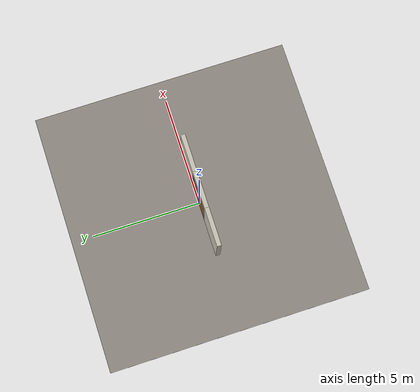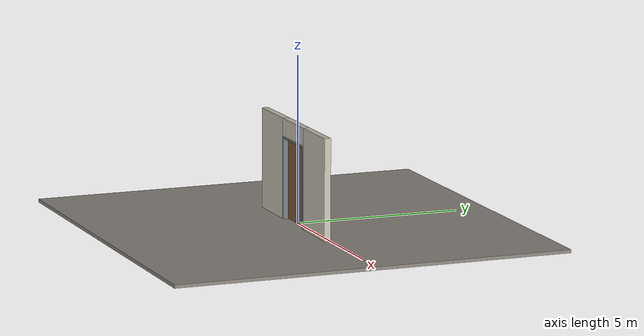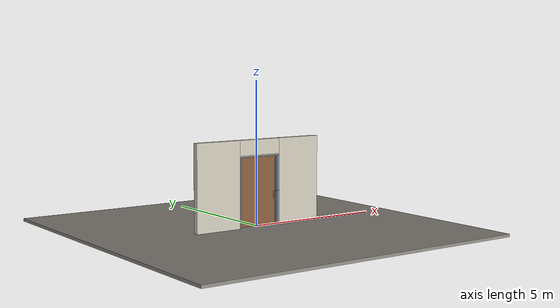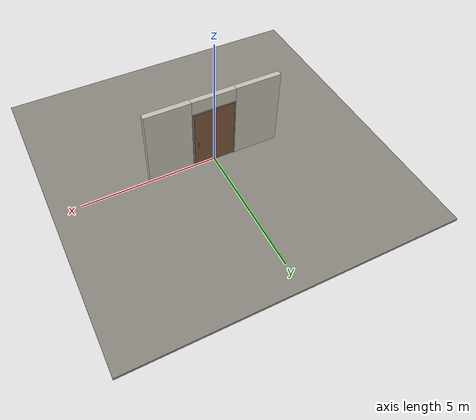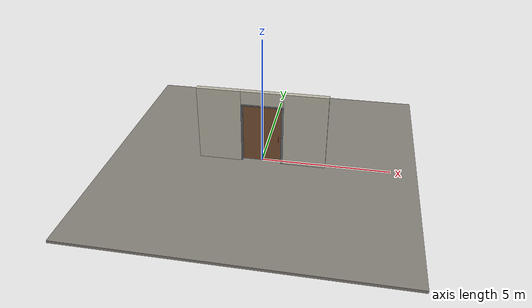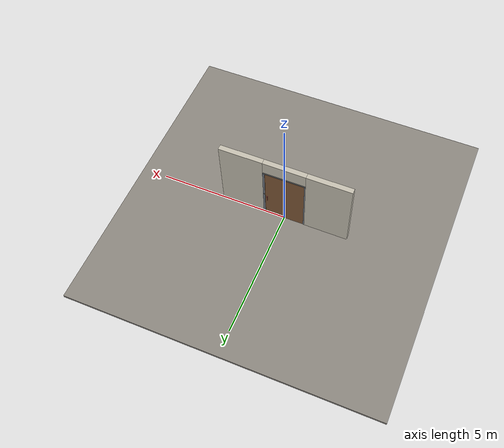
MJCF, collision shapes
<?xml version="1.0" ?>
<mujoco model="db0637_pivot_minimal">
  <compiler angle="radian" meshdir="../../hardware" texturedir="../../textures" autolimits="true" inertiafromgeom="false"/>
  <option timestep="0.002" integrator="implicitfast" cone="elliptic" impratio="10" noslip_iterations="3">
    <flag multiccd="enable"/>
  </option>
  <size memory="16M"/>
  <default>
    <geom condim="4" solref="0.005 1" solimp="0.95 0.99 0.001"/>
    <joint solreflimit="0.005 1" solimplimit="0.95 0.99 0.001"/>
    <tendon solreflimit="0.005 1"/>
    <equality solref="0.002 1"/>
  </default>
  <visual>
    <headlight ambient="0.4 0.4 0.4" diffuse="0.7 0.7 0.7" specular="0.2 0.2 0.2"/>
    <quality shadowsize="4096"/>
    <map znear="0.01" zfar="60"/>
  </visual>
  <asset>
    <mesh name="pull_f8d79d6331" file="pull_f8d79d6331.obj"/>
    <material name="mat_floor" rgba="0.55 0.53 0.5 1" specular="0.2" shininess="0.15" reflectance="0"/>
    <material name="mat_wall" rgba="0.78 0.76 0.7 1" specular="0.2" shininess="0.1" reflectance="0"/>
    <material name="mat_leaf" rgba="0.504 0.347 0.219 1" specular="0.2" shininess="0.5" reflectance="0"/>
    <material name="mat_hinge" rgba="0.65 0.66 0.68 1" specular="0.74" shininess="0.5" reflectance="0.36"/>
    <material name="mat_op_stainless" rgba="0.75 0.76 0.77 1" specular="0.8" shininess="0.65" reflectance="0.4"/>
    <material name="mat_deadbolt" rgba="0.85 0.66 0.3 1" specular="0.8" shininess="0.75" reflectance="0.4"/>
    <material name="mat_frame" rgba="0.45 0.48 0.52 1" specular="0.32" shininess="0.6" reflectance="0.08"/>
    <material name="mat_closer" rgba="0.75 0.76 0.77 1" specular="0.8" shininess="0.65" reflectance="0.4"/>
    <texture name="skybox" type="skybox" builtin="gradient" rgb1="0.6 0.7 0.85" rgb2="0.9 0.92 0.95" width="256" height="256"/>
  </asset>
  <worldbody>
    <light name="sun" pos="1.5 -2.5 4" dir="-0.3 0.5 -0.8" directional="true" diffuse="0.8 0.8 0.8" specular="0.3 0.3 0.3" castshadow="true"/>
    <light name="fill" pos="-1.5 2.5 3" dir="0.3 -0.5 -0.7" directional="true" diffuse="0.35 0.35 0.4" castshadow="false"/>
    <camera name="robot_view" pos="0 -2.95675 2.01415" xyaxes="1 0 0 0 0.26963 0.962964" fovy="52"/>
    <camera name="far_view" pos="0 2.81575 2.01415" xyaxes="-1 0 0 0 -0.26963 0.962964" fovy="52"/>
    <camera name="iso" pos="2.19355 -2.49495 2.47595" xyaxes="0.741536 0.670913 0 -0.242917 0.268487 0.932151" fovy="46"/>
    <camera name="detail_handle" pos="0.822 -0.8975 1.33" xyaxes="0.97561 0.219512 0 -0.070934 0.315262 0.94635" fovy="38"/>
    <geom name="floor" type="box" size="6 6 0.05" pos="0 0 -0.05" material="mat_floor" group="0" contype="1" conaffinity="1" friction="0.8 0.005 0.0001" density="2400"/>
    <geom name="wall_left" type="box" size="0.8495 0.1 1.506" pos="-1.6505 -0.0705 1.506" material="mat_wall" group="0" contype="1" conaffinity="1" friction="0.6 0.005 0.0001" density="800"/>
    <geom name="wall_right" type="box" size="0.8345 0.1 1.506" pos="1.6655 -0.0705 1.506" material="mat_wall" group="0" contype="1" conaffinity="1" friction="0.6 0.005 0.0001" density="800"/>
    <geom name="wall_header" type="box" size="0.816 0.1 0.2625" pos="0.015 -0.0705 2.7495" material="mat_wall" group="0" contype="1" conaffinity="1" friction="0.6 0.005 0.0001" density="800"/>
    <geom name="jamb_hinge" type="box" size="0.0225 0.1 1.206" pos="-0.7785 -0.0705 1.206" material="mat_frame" group="0" contype="1" conaffinity="1" friction="0.6 0.005 0.0001" density="300"/>
    <geom name="strike_1190_wall_n" type="box" size="0.0375 0.0805 0.0155" pos="0.7935 -0.09 1.19" material="mat_frame" group="0" contype="1" conaffinity="1" friction="0.6 0.005 0.0001" density="300"/>
    <geom name="strike_1190_wall_p" type="box" size="0.0375 0.01 0.0155" pos="0.7935 0.0195 1.19" material="mat_frame" group="0" contype="1" conaffinity="1" friction="0.6 0.005 0.0001" density="300"/>
    <geom name="strike_1190_back" type="box" size="0.0228 0.0095 0.0155" pos="0.8082 0 1.19" material="mat_frame" group="0" contype="1" conaffinity="1" friction="0.6 0.005 0.0001" density="300"/>
    <geom name="jamb_strike_0" type="box" size="0.0375 0.1 0.58725" pos="0.7935 -0.0705 0.58725" material="mat_frame" group="0" contype="1" conaffinity="1" friction="0.6 0.005 0.0001" density="300"/>
    <geom name="jamb_strike_1" type="box" size="0.0375 0.1 0.60325" pos="0.7935 -0.0705 1.80875" material="mat_frame" group="0" contype="1" conaffinity="1" friction="0.6 0.005 0.0001" density="300"/>
    <geom name="jamb_head" type="box" size="0.816 0.1 0.0225" pos="0.015 -0.0705 2.4345" material="mat_frame" group="0" contype="1" conaffinity="1" friction="0.6 0.005 0.0001" density="300"/>
    <geom name="head_stud" type="box" size="0.816 0.1 0.015" pos="0.015 -0.0705 2.472" material="mat_wall" group="0" contype="1" conaffinity="1" friction="0.6 0.005 0.0001" density="500"/>
    <site name="approach_point" pos="0 -1.5 0" quat="1 0 0 0" size="0.05" rgba="0.2 0.9 0.2 0.5" group="4"/>
    <site name="goal_point" pos="0 1.5 0" quat="1 0 0 0" size="0.05" rgba="0.2 0.9 0.2 0.5" group="4"/>
    <site name="door_plane_center" pos="0 0 1.206" quat="1 0 0 0" size="0.02" rgba="0.2 0.9 0.2 0.5" group="4"/>
    <body name="leaf" pos="-0.756 0 0">
      <inertial pos="0.766085 0 1.204795" mass="115.832694" quat="0.498182 0.498182 -0.501812 0.501812" diaginertia="22.272620083 54.588035194 76.783847661"/>
      <joint name="leaf_hinge" type="hinge" axis="0 0 1" pos="0.019 0.0325 0" limited="true" range="0 1.919862" damping="10.19429" frictionloss="1.205275" stiffness="50.986878" springref="-2.013459" armature="0.02"/>
      <geom name="leaf_slab" type="box" size="0.75 0.0225 1.2" pos="0.753 0 1.208" material="mat_leaf" group="0" contype="1" conaffinity="1" friction="0.4 0.005 0.0001" density="1"/>
      <geom name="leaf_pull_n" type="mesh" mesh="pull_f8d79d6331" pos="1.398 -0.0225 1.05" quat="0.707107 0.707107 0 0" material="mat_op_stainless" group="1" contype="0" conaffinity="0" density="3000"/>
      <geom name="leaf_pull_col_n" type="capsule" size="0.0125 0.13" pos="1.398 -0.0975 1.05" material="mat_op_stainless" group="3" contype="1" conaffinity="1" rgba="0.8 0.3 0.3 0.25" friction="0.7 0.01 0.0001" density="3000"/>
      <geom name="leaf_pull_p" type="mesh" mesh="pull_f8d79d6331" pos="1.398 0.0225 1.05" quat="-0.707107 0.707107 0 0" material="mat_op_stainless" group="1" contype="0" conaffinity="0" density="3000"/>
      <geom name="leaf_pull_col_p" type="capsule" size="0.0125 0.13" pos="1.398 0.0975 1.05" material="mat_op_stainless" group="3" contype="1" conaffinity="1" rgba="0.8 0.3 0.3 0.25" friction="0.7 0.01 0.0001" density="3000"/>
      <site name="leaf_pull_grip_n" pos="1.398 -0.0975 1.05" quat="1 0 0 0" size="0.012" rgba="0.2 0.9 0.2 0.5" group="4"/>
      <site name="leaf_pull_grip_p" pos="1.398 0.0975 1.05" quat="1 0 0 0" size="0.012" rgba="0.2 0.9 0.2 0.5" group="4"/>
      <site name="leaf_edge_mid" pos="1.503 0 1.2" quat="1 0 0 0" size="0.02" rgba="0.2 0.9 0.2 0.5" group="4"/>
    </body>
  </worldbody>
  <sensor>
    <jointpos name="leaf_hinge_pos" joint="leaf_hinge"/>
    <jointvel name="leaf_hinge_vel" joint="leaf_hinge"/>
  </sensor>
</mujoco>
